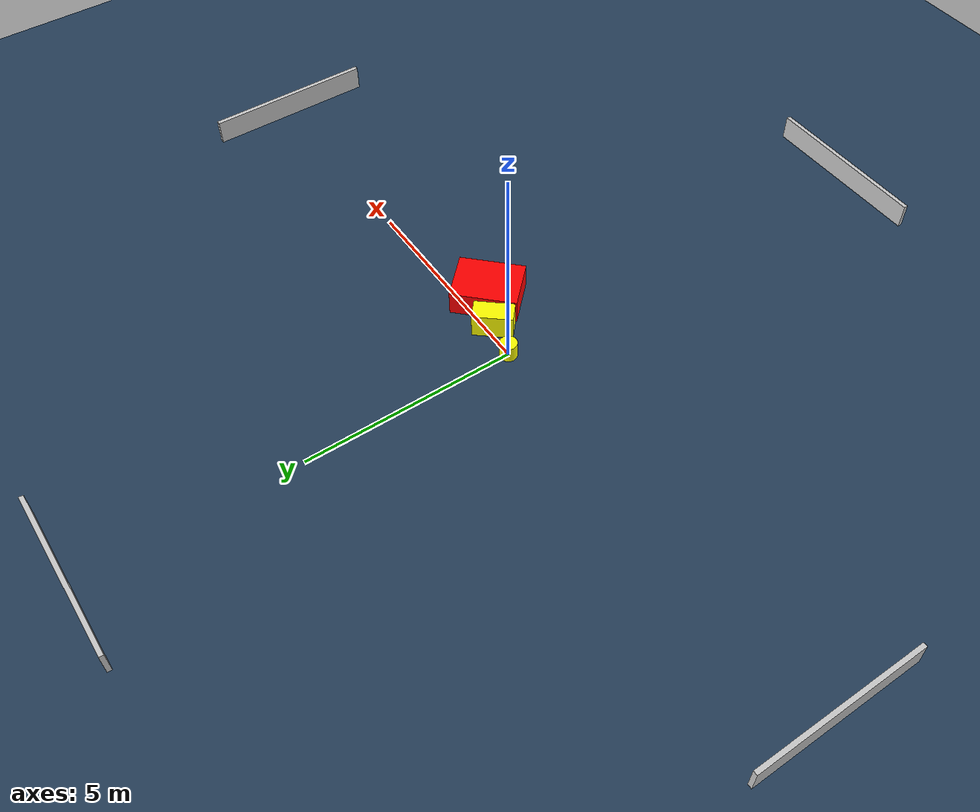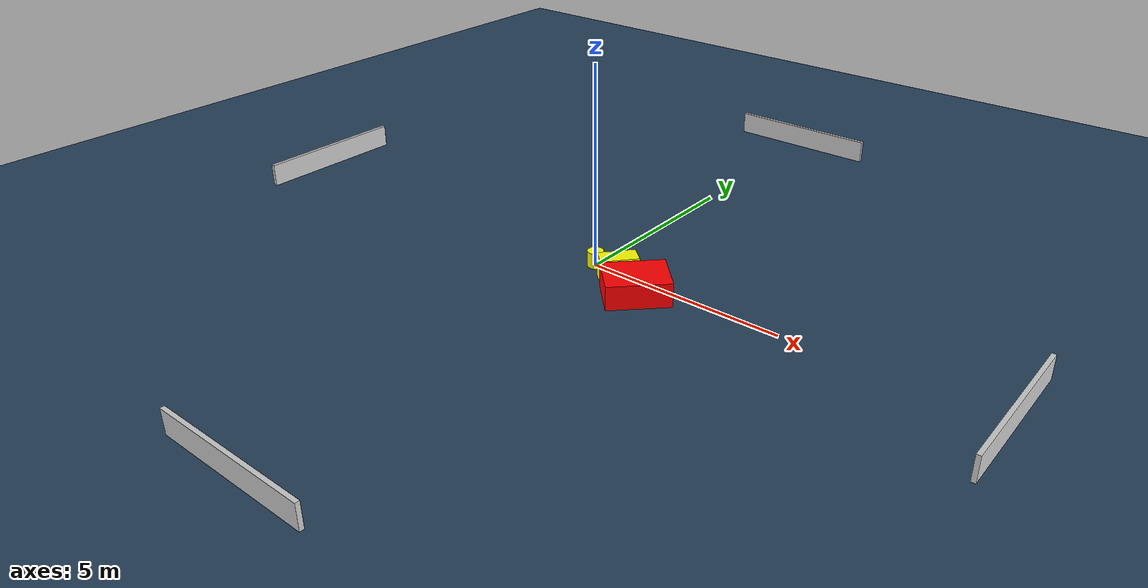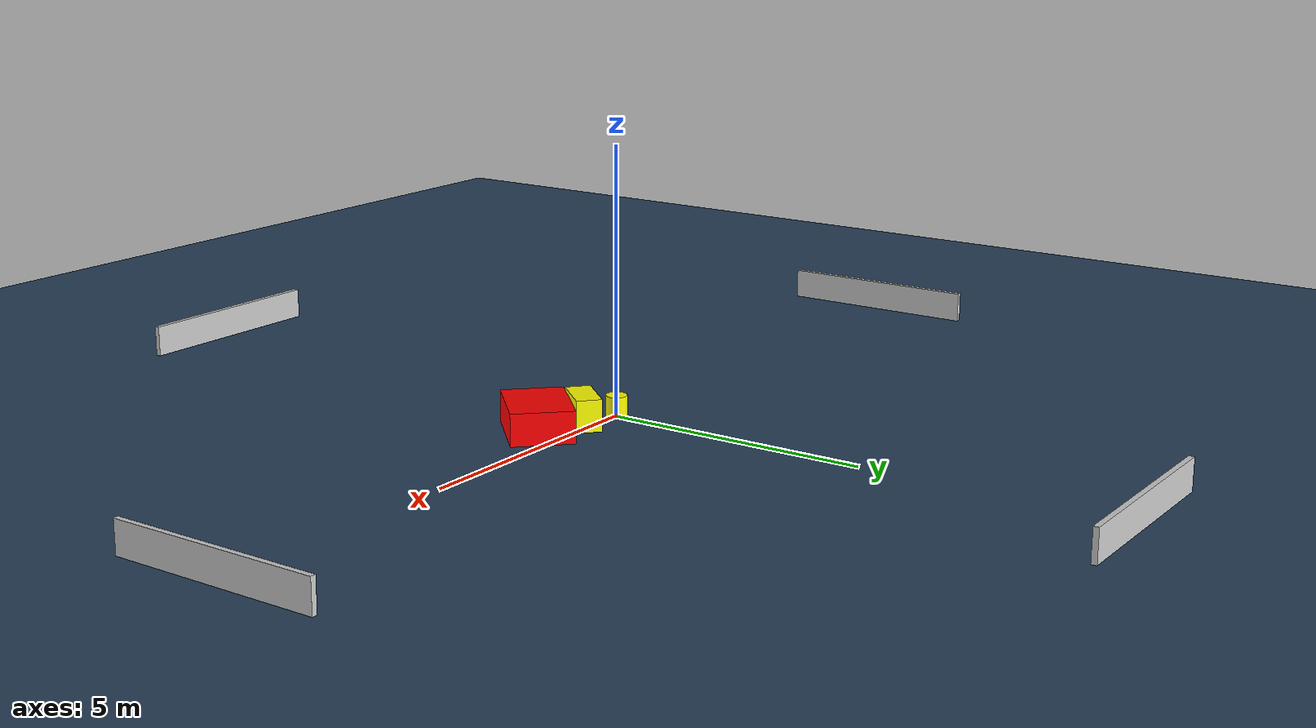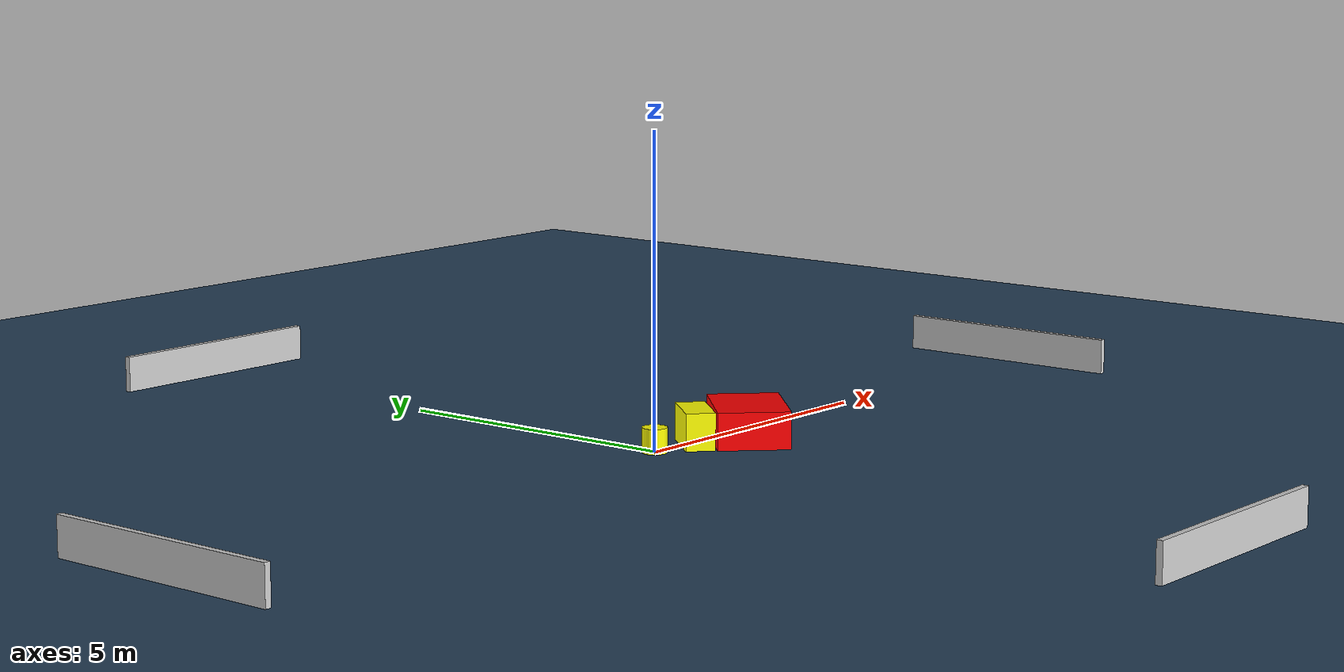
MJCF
<?xml version="1.0" ?>
<mujoco model="generated_environment">
  <option timestep="0.01" integrator="RK4" cone="elliptic"/>
  <default>
    <geom density="1"/>
  </default>
  <asset>
    <texture builtin="gradient" height="3072" name="skybox" rgb1="0.3 0.5 0.7" rgb2="0 0 0" type="skybox" width="512"/>
    <texture builtin="checker" height="300" name="groundplane" rgb1="0.2 0.3 0.4" rgb2="0.1 0.2 0.3" type="2d" width="300"/>
    <material name="groundplane" reflectance="0.2" texrepeat="5 5" texture="groundplane"/>
  </asset>
  <worldbody>
    <light dir="0 0 -1" directional="true" pos="0 0 1.5"/>
    <geom condim="3" friction="0.5 0.005 0.001" material="groundplane" name="floor" pos="0 0 0" size="0 0 0.05" type="plane"/>
    <body name="walls">
      <geom name="wall_1" condim="4" pos="-10.0 0.0 0.3" rgba="0.800000011920929 0.800000011920929 0.800000011920929 1.0" size="0.05 2.0 0.3" type="box"/>
      <geom name="wall_2" condim="4" pos="10.0 0.0 0.3" rgba="0.800000011920929 0.800000011920929 0.800000011920929 1.0" size="0.05 2.0 0.3" type="box"/>
      <geom name="wall_3" condim="4" pos="0.0 -10.0 0.3" rgba="0.800000011920929 0.800000011920929 0.800000011920929 1.0" size="2.0 0.05 0.3" type="box"/>
      <geom name="wall_4" condim="4" pos="0.0 10.0 0.3" rgba="0.800000011920929 0.800000011920929 0.800000011920929 1.0" size="2.0 0.05 0.3" type="box"/>
    </body>
    <body name="robot">
      <joint name="joint_x" type="slide" pos="0 0 0" axis="1 0 0"/>
      <joint name="joint_y" type="slide" pos="0 0 0" axis="0 1 0"/>
      <geom name="robot" type="cylinder" pos="0.0 0.0 0.2" size="0.2 0.2 0.0" mass="5.0" friction="1.0 0.005 0.0001" condim="4" rgba="1.0 1.0 0.0 1.0"/>
    </body>
    <body name="obstacle_1_movable">
      <geom name="obstacle_1_movable" condim="4" pos="0.8087251784151492 -0.1581220386618348 0.3" euler="0 0 139.19362234708424" friction="0.0 0.005 0.001" rgba="1.0 1.0 0.0 1.0" size="0.23620484165175643 0.4616318027357456 0.3" type="box" mass="0.1"/>
      <joint type="free"/>
    </body>
    <body name="obstacle_2_static">
      <geom name="obstacle_2_static" condim="4" pos="1.6337190721991368 -0.5682125852536415 0.3" euler="0 0 224.877401130214" friction="0.0 0.005 0.001" rgba="1.0 0.0 0.0 1.0" size="0.7641231105527475 0.5792063223945119 0.3" type="box"/>
    </body>
  </worldbody>
  <actuator>
    <motor name="actuator_x" joint="joint_x" gear="1" ctrlrange="-1 1"/>
    <motor name="actuator_y" joint="joint_y" gear="1" ctrlrange="-1 1"/>
  </actuator>
</mujoco>
